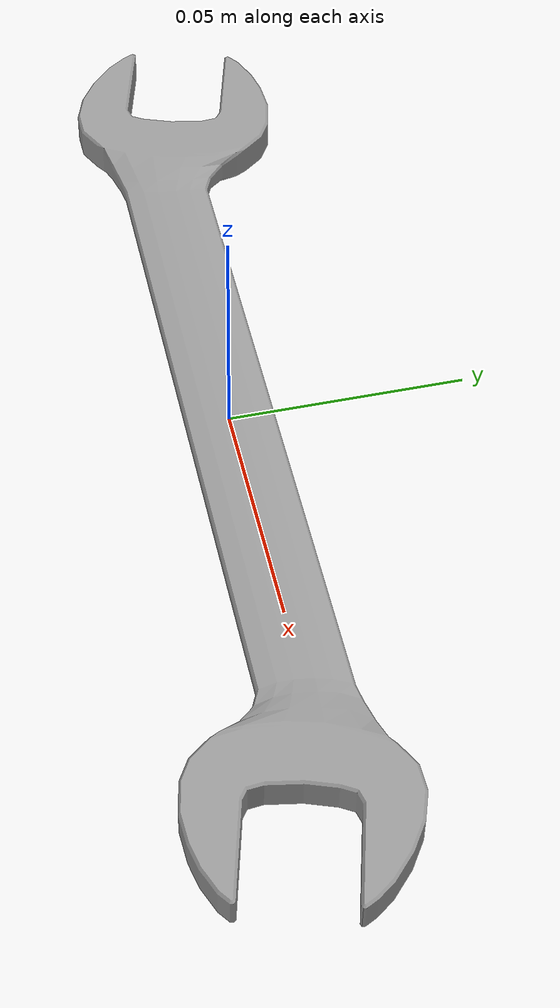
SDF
<?xml version='1.0'?>
<sdf version='1.6'>
  <model name='jsk_wrench'>
    <link name='link_0'>
      <inertial>
        <mass>0.5</mass>
        <pose> 0.02 0 0 0 0 0</pose>
        <inertia>
          <ixx>6.0e-5</ixx>
          <iyy>2.0e-3</iyy>
          <izz>2.0e-3</izz>
          <ixy>0</ixy>
          <ixz>0</ixz>
          <iyz>0</iyz>
        </inertia>
      </inertial>
      <visual name='visual'>
        <pose frame=''>0 0 0 1.57079632679490 -0 0.26</pose>
        <geometry>
          <mesh>
            <uri>model://jsk_wrench/meshes/wrench.dae</uri>
            <scale>0.0017 0.0017 0.0017</scale>
          </mesh>
        </geometry>
      </visual>

      <collision name='simple_0'>
        <laser_retro>0</laser_retro>
        <max_contacts>10</max_contacts>
        <pose frame=''>0 0 0  0 0 0</pose>
        <geometry>
          <box>
            <size>0.18 0.0185 0.007</size>
          </box>
        </geometry>
      </collision>
      <collision name='simple_1'>
        <laser_retro>0</laser_retro>
        <max_contacts>10</max_contacts>
        <pose frame=''>0.095 -0.0075 0 0 0 0</pose>
        <geometry>
          <cylinder>
            <radius> 0.023 </radius>
            <length> 0.007 </length>
          </cylinder>
        </geometry>
      </collision>
      <collision name='simple_2'>
        <laser_retro>0</laser_retro>
        <max_contacts>10</max_contacts>
        <pose frame=''>-0.095 0.0075 0 0 0 0</pose>
        <geometry>
          <cylinder>
            <radius> 0.023 </radius>
            <length> 0.007 </length>
          </cylinder>
        </geometry>
      </collision>
    </link>
  </model>
</sdf>
